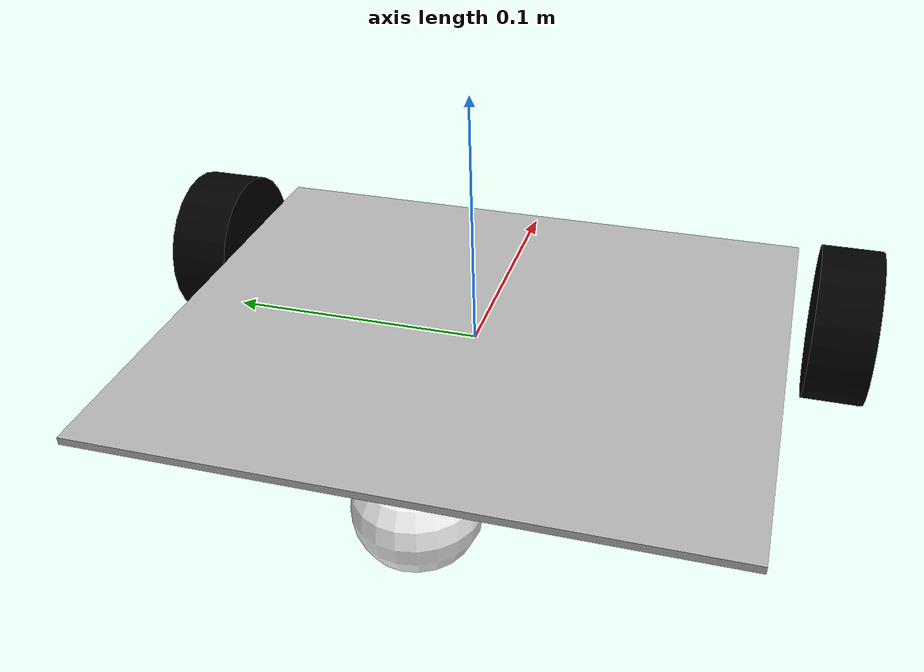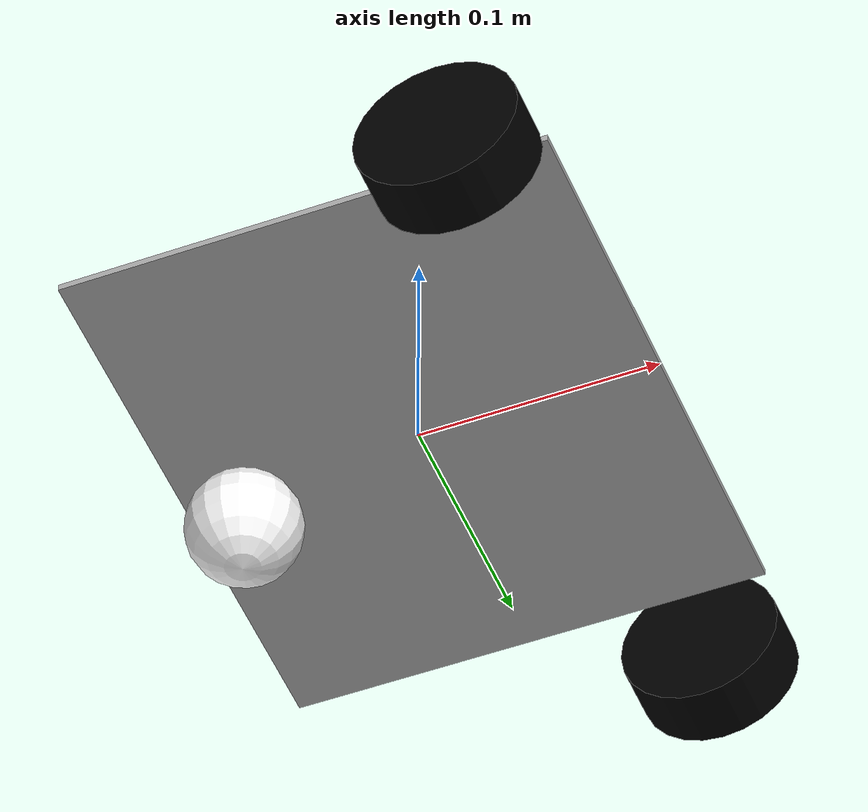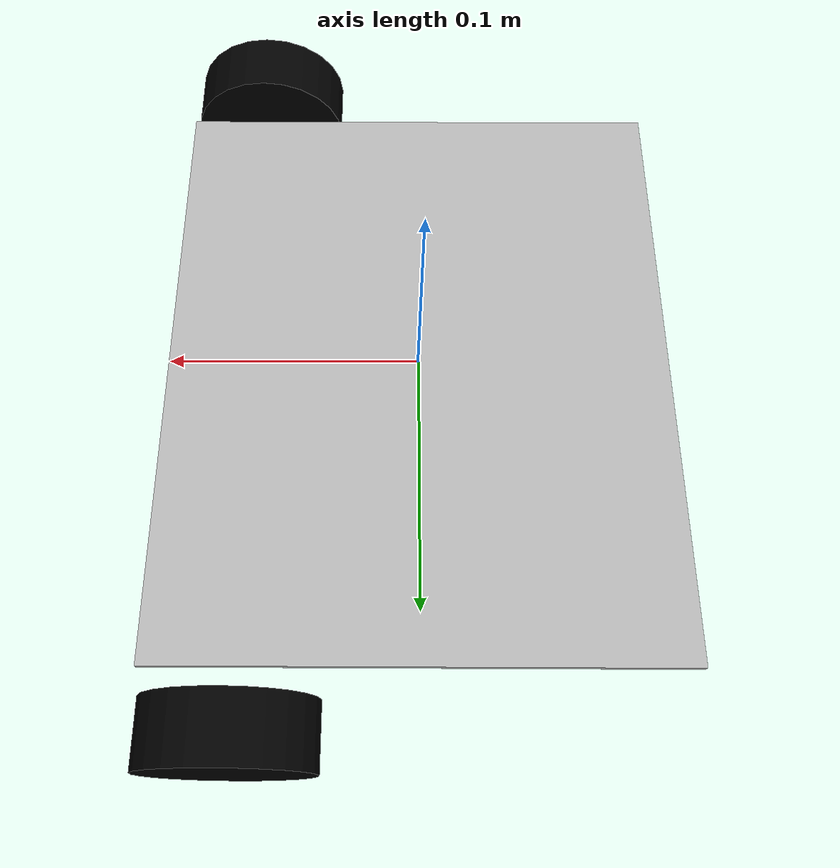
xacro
<?xml version="1.0"?>
<robot xmlns:xacro="https://www.ros.org/wiki/xacro">

    <xacro:include filename="robot_material.xacro"/>
    <xacro:include filename="inertial_macros.xacro"/>

    <link name="base_link"/>

    <link name="chassis_link">
        <visual>
            <geometry>
                <box size=".2 .24 .003"/>
            </geometry>
            <origin xyz="0 0 0.0015" rpy="0 0 0" />
            <material name="gray" />
        </visual>
        <collision>
            <geometry>
                <box size=".2 .24 .003"/>
            </geometry>
            <origin xyz="0 0 0.0015" rpy="0 0 0" />
        </collision>
        <xacro:inertial_box mass=".09" x=".2" y=".24" z=".003">
            <origin xyz="0 0 0.0015" rpy="0 0 0"/>
        </xacro:inertial_box>
    </link>

    <joint name="chassis_joint" type="fixed">
        <parent link="base_link"/>
        <child link="chassis_link"/>
        <origin xyz="0 0 0" rpy="0 0 0"/>
    </joint>

    <gazebo reference="chassis_link">
        <material>Gazebo/White</material>
    </gazebo>

    <link name="left_wheel_link">
        <visual>
            <geometry>
                    <cylinder radius=".033" length="0.0254"/>
                </geometry>
                <origin xyz="0 0 0" rpy="0 0 0" />
                <material name="black"/>
        </visual>
        <collision>
            <geometry>
                <cylinder radius=".033" length="0.0254"/>
            </geometry>
            <origin xyz="0 0 0" rpy="0 0 0"/>
        </collision>
        <xacro:inertial_cylinder mass=".1" length=".0254" radius=".033">
            <origin xyz="0 0 0 " rpy="0 0 0"/>
        </xacro:inertial_cylinder>
    </link>

    <joint name="base_left_wheel_joint" type="continuous">
        <parent link="base_link"/>
        <child link="left_wheel_link"/>
        <origin xyz="0.06825 0.14143125 -.0145" rpy="-${pi/2} 0 0"/>
        <axis xyz="0 0 1" />
        <limit effort="30" velocity="10"/> <!--this will likely change, see urdf page. Effort could be set to estimated stall torque-->
    </joint>

    <gazebo reference="left_wheel_link">
        <material>Gazebo/Black</material>
    </gazebo>

    <link name="right_wheel_link">
        <visual>
            <geometry>
                <cylinder radius=".033" length="0.0254"/>
            </geometry>
            <origin xyz="0 0 0" rpy="0 0 0" />
            <material name="black"/>
        </visual>
        <collision>
            <geometry>
                <cylinder radius=".033" length="0.0254"/>
            </geometry>
            <origin xyz="0 0 0" rpy="0 0 0"/>
        </collision>
                <xacro:inertial_cylinder mass=".1" length=".0254" radius=".033">
            <origin xyz="0 0 0 " rpy="0 0 0"/>
        </xacro:inertial_cylinder>
    </link>

    <joint name="base_right_wheel_joint" type="continuous">
        <parent link="base_link"/>
        <child link="right_wheel_link"/>
        <origin xyz="0.06825 -0.14143125 -.0145" rpy="${pi/2} 0 0"/>
        <axis xyz="0 0 -1" />
        <limit effort="30" velocity="10"/> <!--this will likely change, see urdf page. Effort could be set to estimated stall torque-->
    </joint>

    <gazebo reference="right_wheel_link">
        <material>Gazebo/Black</material>
    </gazebo>

    <link name="caster_wheel_link">
        <visual>
            <geometry>
                <sphere radius=".02375"/>
            </geometry>
            <origin xyz="0 0 0" rpy="0 0 0" />
            <material name="white"/>
        </visual>
        <collision>
            <geometry>
                <sphere radius=".02375"/>
            </geometry>
            <origin xyz="0 0 0" rpy="0 0 0"/>
        </collision>
        <inertial>
            <mass value="0.034"/>
            <origin xyz="0 0 0" rpy="0 0 0"/>
            <inertia ixx=".00000767125" ixy="0" ixz="0" iyy=".00000767125" iyz="0" izz=".00000767125"/>
        </inertial>
        <xacro:inertial_sphere mass=".1" radius=".02375">
            <origin xyz="0 0 0" rpy="0 0 0"/>
        </xacro:inertial_sphere>
    </link>

    <joint name="base_caster_wheel_joint" type="fixed">
        <parent link="base_link"/>
        <child link="caster_wheel_link"/>
        <origin xyz="-0.0730125 0 -.02375" rpy="0 0 0"/>
    </joint>

    <gazebo reference="caster_wheel_link">
        <material>Gazebo/White</material>
    </gazebo>

</robot>

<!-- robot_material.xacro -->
<robot xmlns:xacro="https://www.ros.org/wiki/xacro">

    <material name="gray">
        <color rgba="0.7 0.7 0.7 1"/>
    </material>

    <material name="green">
        <color rgba="0 0.6 0 1"/>
    </material>

    <material name="white">
        <color rgba="1 1 1 1"/>
    </material>

    <material name="blue">
        <color rgba="0 0 1 1"/>
    </material>

    <material name="black">
        <color rgba="0 0 0 1"/>
    </material>

    <material name="red">
        <color rgba="1 0 0 1"/>
    </material>

</robot>
